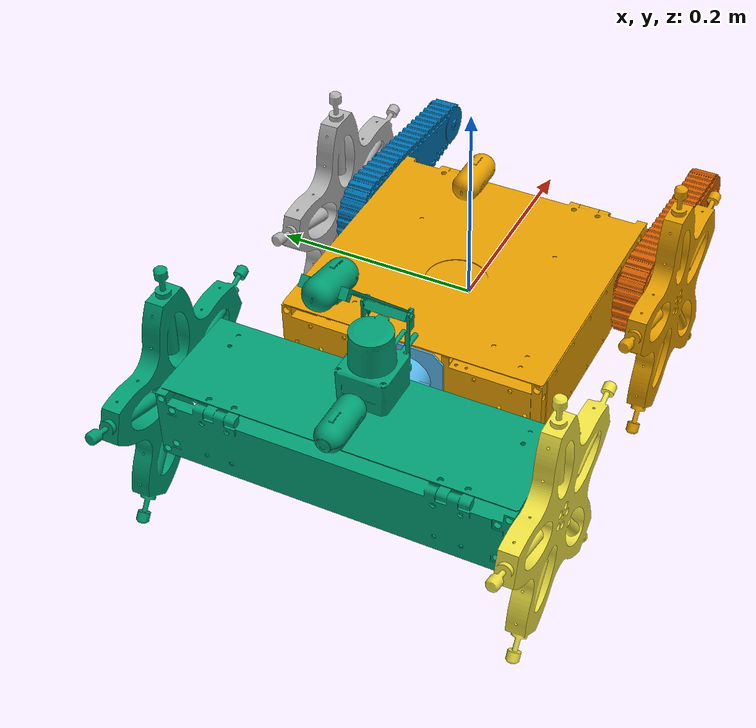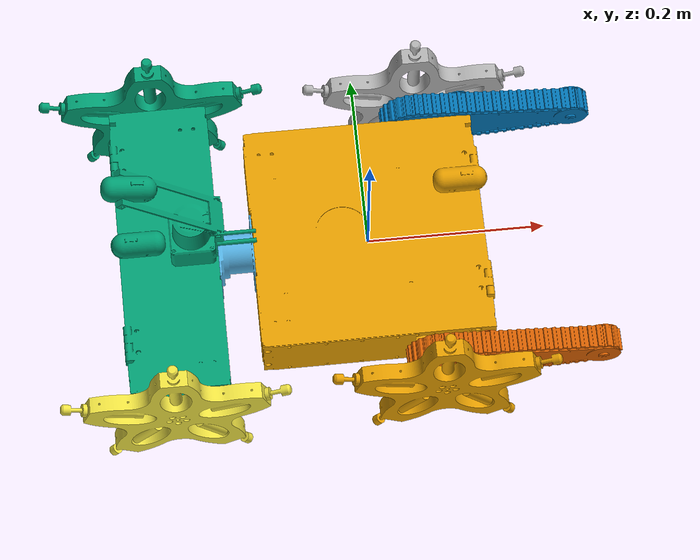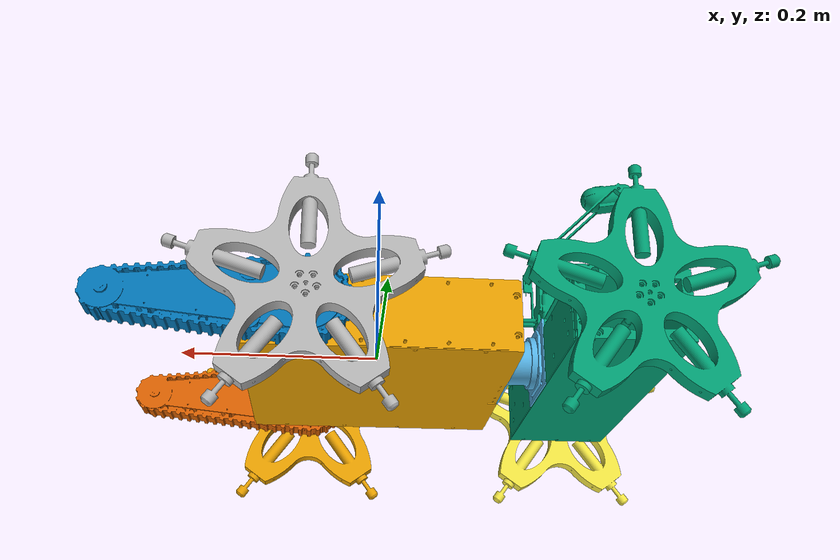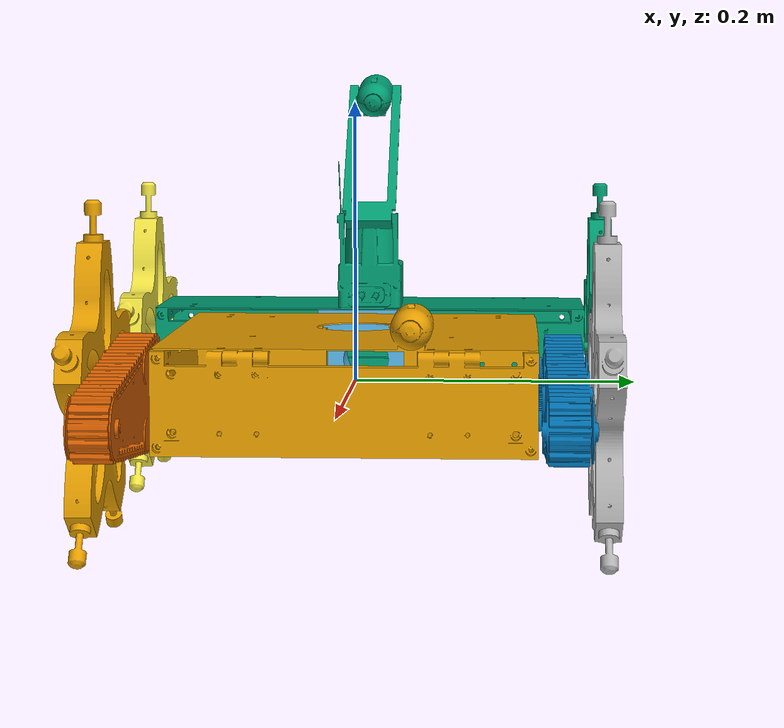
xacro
<?xml version="1.0"?>
<robot name="newrobo" xmlns:xacro="http://www.ros.org/wiki/xacro">
	<xacro:include filename="$(find xacro)/define.xacro" />
	<xacro:include filename="$(find shinobi_newrobo_display)/robot/config.xacro" />
	<xacro:include filename="$(find shinobi_newrobo_display)/robot/flipper_macro.xacro" />
	<xacro:include filename="$(find shinobi_newrobo_display)/robot/starWheel_macro.xacro" />
	<xacro:include filename="$(find shinobi_newrobo_display)/robot/armjack_left_macro.xacro" />
	<xacro:include filename="$(find shinobi_newrobo_display)/robot/armjack_right_macro.xacro" />

	<!-- BODY -->
	<link name="body_front">
		<visual>
			<origin rpy="0 0 0"
							xyz="0 0 0"/>
			<geometry>
				<mesh filename="${robotPackagePath}/${modelDataResourseFolder}/body_front.stl"/>
			</geometry>
		</visual>
	</link>

  <joint name="joint_body_pitch" type="revolute">
    <axis xyz="0 1 0"/>
    <limit 	lower="${DEG2RAD*bodyPitchAngle_min}" effort="1000.0"
						upper="${DEG2RAD*bodyPitchAngle_max}" velocity="0.5"/>
    <origin rpy="0 0 0"
						xyz="${-bodyFront_depth/2.0} 0 ${-bodyFront_height/2.0}"/>
    <parent link="body_front"/>
    <child link="body_link"/>
  </joint>

	<link name="body_link">
		<visual>
			<origin rpy="0 0 0"
							xyz="${-bodyLink_length/2.0} 0 ${bodyFront_height/2.0}"/>
			<geometry>
				<mesh filename="${robotPackagePath}/${modelDataResourseFolder}/body_link.stl"/>
			</geometry>
		</visual>
	</link>

  <joint name="joint_body_roll" type="continuous">
    <axis xyz="1 0 0"/>
    <origin rpy="0 0 0"
						xyz="0 0 0"/>
    <parent link="body_link"/>
    <child link="body_back"/>
  </joint>

	<link name="body_back">
		<visual>
			<origin rpy="0 0 0"
							xyz="${-bodyLink_length - bodyBack_depth/2.0} 0 ${bodyBack_height/2.0}"/>
			<geometry>
				<mesh filename="${robotPackagePath}/${modelDataResourseFolder}/body_back.stl"/>
			</geometry>
		</visual>
	</link>

	<!-- FLIPPERS -->
	<xacro:combine_lr_flippers
									left_joint_name="joint_flipper_left" right_joint_name="joint_flipper_right"
									parent="body_front" flipper_tread="${flipper_tread}" suffix="front">
		<origin rpy="0 0 0" xyz="${flipperAxis_fromBodyCenter} 0 0"/>
	</xacro:combine_lr_flippers>

	<!-- WHEELS -->
	<xacro:combine_lr_wheels
									joint_name="joint_starwheel_front" parent="body_front"
									suffix="front" wheel_tread="${frontwheel_tread}">
		<origin rpy="0 0 0"
						xyz="${frontwheelAxis_fromBodyCenter} 0 0" />
	</xacro:combine_lr_wheels>

	<xacro:combine_lr_wheels
									joint_name="joint_starwheel_back" parent="body_back"
									suffix="back" wheel_tread="${backwheel_tread}">
		<origin rpy="0 0 0"
						xyz="${backwheelAxis_fromBodyCenter} 0 ${bodyBack_height/2.0}" />
	</xacro:combine_lr_wheels>

</robot>

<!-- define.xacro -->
<robot>

	<property name="PI" 		value= "3.141592653" />
	<property name="DEG2RAD" 	value= "0.017453293" />
	<property name="RAD2DEG" 	value="57.295779513" />

</robot>

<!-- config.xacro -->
<robot>

	<property name="robotPackagePath" value="package://shinobi_newrobo_display/robot"/>
	<property name="modelDataResourseFolder" value="newRobotStls"/>

	<property name="bodyFront_depth" 	value="0.262" />
  <property name="bodyFront_height" value="0.072" />
  <property name="bodyFront_width" 	value="0.262" />

	<property name="bodyPitchAngle_max"	value=  "0" />
	<property name="bodyPitchAngle_min"	value="-90" />

	<property name="bodyLink_length" value="0.038" />

  <property name="bodyBack_depth" 	value="0.112" />
  <property name="bodyBack_height" 	value="0.072" />
  <property name="bodyBack_width" 	value="0.340" />

  <property name="starWheel_width" 	value="0.018" />
  <property name="starWheel_radius" value="0.134" />
  <property name="starWheelAxis_radius" value="0.134" />

	<property name="frontwheelAxis_fromBodyCenter" value="0.070" />
  <property name="backwheelAxis_fromBodyCenter" value="-0.100" />
	<property name="frontwheel_tread" value="0.372"/> <!-- from outside to outside -->
  <property name="backwheel_tread" value="0.386"/> <!-- from outside to outside -->

  <property name="flipper_width" 		value="0.025" />
  <property name="flipper_length" 	value="0.178" />
  <property name="flipper_tread" 	value="0.320" /> <!-- from outside to outside -->

  <property name="flipperBigPulley_radius" value="0.032" />
  <property name="flipperAngle_max" value= "90" />
  <property name="flipperAngle_min" value="-90" />
  <property name="flipperAxis_fromBodyCenter" value="0.070" />
  <property name="flipperOffset_fromBodySide" value="0.010" />

	<property name="armYawAngle_max"	value= "90" />
	<property name="armYawAngle_min"	value="-90" />
	<property name="armPitchAngle_max"	value= "90" />
	<property name="armPitchAngle_min"	value="-90" />

  <property name="armBase_fromBodyCenter_X" value="0.040" />
  <property name="armYawStage_fromBodyTop" value="0.020" />
  <property name="armPitchAxis_fromYawAxis" value="0.045" />
  <property name="armPitchAxis_fromYawStage" value="0.045" />
  <property name="armLinearAxis_fromPitchAxis" value="0.010" />
  <property name="armLinearAxis_fromYawStage" value="0.055" />

	<property name="armLinearBase_ArmLinearAxis" value="0.025" />

  <property name="armLinear_frame_length" value="0.200" />

  <property name="arm_linear_frame_left_A" value="arm_linear_frame_left_A" />
  <property name="arm_linear_frame_left_B" value="arm_linear_frame_left_B" />
  <property name="joint_armLinear_left_A" value="joint_armLinear_left_A" />
  <property name="joint_armLinear_left_B" value="joint_armLinear_left_B" />
  <property name="joint_armLinear_left_C" value="joint_armLinear_left_C" />

  <property name="arm_linear_frame_right_A" value="arm_linear_frame_right_A" />
  <property name="arm_linear_frame_right_B" value="arm_linear_frame_right_B" />
  <property name="joint_armLinear_right_A" value="joint_armLinear_right_A" />
  <property name="joint_armLinear_right_B" value="joint_armLinear_right_B" />
  <property name="joint_armLinear_right_C" value="joint_armLinear_right_C" />

</robot>

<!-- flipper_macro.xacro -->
<robot xmlns:xacro="http://www.ros.org/wiki/xacro">
	<xacro:include filename="$(find shinobi_newrobo_display)/robot/config.xacro" />

	<xacro:macro 	name="combine_lr_flippers"
								params="left_joint_name right_joint_name parent flipper_tread suffix *origin">

	<!-- Axis -->
		<joint name="fixedJoint_flipperAxis_${suffix}" type="fixed">
			<insert_block name="origin" />
  	  <parent link="${parent}" />
  	  <child link="virtualLink_flipperAxis_${suffix}"/>
  	</joint>

		<link name="virtualLink_flipperAxis_${suffix}" />

	<!-- left -->
		<joint name="${left_joint_name}" type="revolute">
  	  <axis xyz="0 1 0"/>
			<origin rpy="0 0 0"
							xyz="0 ${flipper_tread/2.0} 0" />
    	<limit 	lower="${DEG2RAD*flipperAngle_min}" effort="1000.0"
							upper="${DEG2RAD*flipperAngle_max}" velocity="0.5"/>
  	  <parent link="virtualLink_flipperAxis_${suffix}"/>
  	  <child link="flippper_left_${suffix}"/>
  	</joint>

		<link name="flippper_left_${suffix}">
			<visual>
				<origin rpy="0 0 0" xyz="0 0 0"/>
				<geometry>
					<mesh filename="${robotPackagePath}/${modelDataResourseFolder}/flipper_left.stl"/>
				</geometry>
			</visual>
		</link>

	<!-- right -->
		<joint name="${right_joint_name}" type="revolute">
  	  <axis xyz="0 1 0"/>
			<origin rpy="0 0 0"
							xyz="0 ${-flipper_tread/2.0} 0" />
    	<limit 	lower="${DEG2RAD*flipperAngle_min}" effort="1000.0"
							upper="${DEG2RAD*flipperAngle_max}" velocity="0.5"/>
  	  <parent link="virtualLink_flipperAxis_${suffix}"/>
  	  <child link="flipper_right_${suffix}"/>
  	</joint>

		<link name="flipper_right_${suffix}">
			<visual>
				<origin rpy="0 0 0" xyz="0 0 0"/>
				<geometry>
					<mesh filename="${robotPackagePath}/${modelDataResourseFolder}/flipper_right.stl"/>
				</geometry>
			</visual>
		</link>

	</xacro:macro>
</robot>

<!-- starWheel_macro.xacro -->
<robot xmlns:xacro="http://www.ros.org/wiki/xacro">
	<xacro:include filename="$(find shinobi_newrobo_display)/robot/config.xacro" />

	<xacro:macro 	name="combine_lr_wheels"
								params="joint_name parent suffix wheel_tread *origin">

	<!-- Axis -->
		<joint name="${joint_name}" type="continuous">
  	  <axis xyz="0 1 0"/>
			<insert_block name="origin" />
  	  <parent link="${parent}"/>
  	  <child link="virtual_starWheelAxisLink_${suffix}"/>
  	</joint>

		<link name="virtual_starWheelAxisLink_${suffix}" />

	<!-- left -->
		<joint name="fixedJoint_left_${suffix}" type="fixed">
			<parent link="virtual_starWheelAxisLink_${suffix}"/>
  	  <child  link="starWheel_left_${suffix}"/>
  	  <origin xyz="0 ${wheel_tread/2.0} 0"/>
		</joint>

		<link name="starWheel_left_${suffix}">
			<visual>
				<origin rpy="0 0 0"
								xyz="0 0 0"/>
				<geometry>
					<mesh filename="${robotPackagePath}/${modelDataResourseFolder}/wheel_left.stl"/>
				</geometry>
			</visual>
		</link>

	<!-- right -->
		<joint name="fixedJoint_right_${suffix}" type="fixed">
			<parent link="virtual_starWheelAxisLink_${suffix}"/>
  	  <child  link="starWheel_right_${suffix}"/>
  	  <origin xyz="0 ${-wheel_tread/2.0} 0"/>
		</joint>

		<link name="starWheel_right_${suffix}">
			<visual>
				<origin rpy="0 0 0"
								xyz="0 0 0"/>
				<geometry>
					<mesh filename="${robotPackagePath}/${modelDataResourseFolder}/wheel_right.stl"/>
				</geometry>
			</visual>
		</link>

	</xacro:macro>
</robot>
